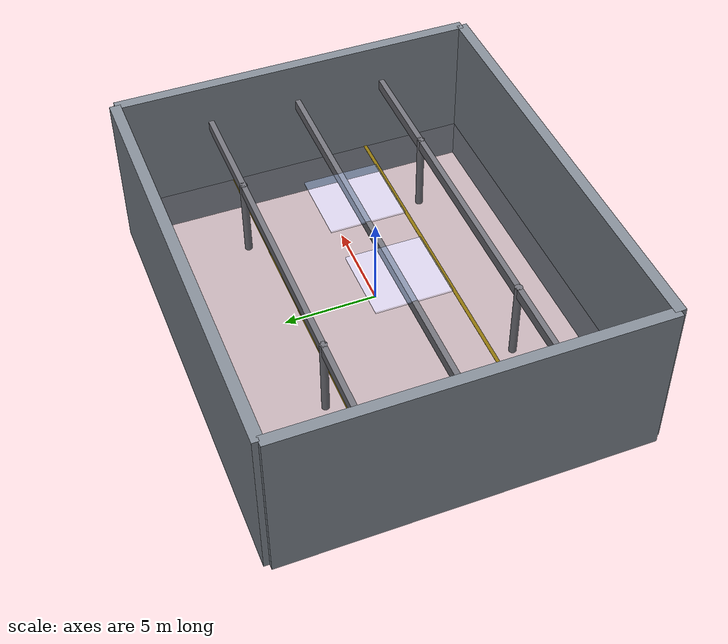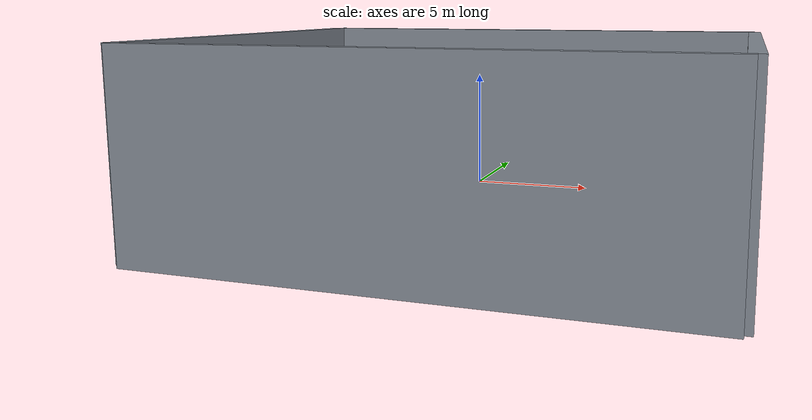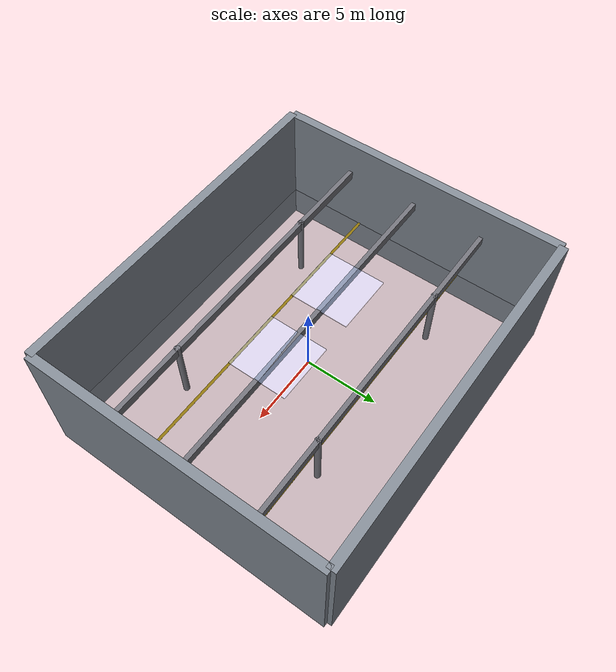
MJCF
<mujoco model="room">
<!-- Warehouse room assets and geometry -->
  <asset>
    <!-- Dark concrete floor with expansion joints -->
    <texture name="concrete_floor" type="2d" builtin="checker"
             rgb1="0.35 0.35 0.38" rgb2="0.32 0.32 0.35"
             width="100" height="100"/>

    <!-- Corrugated metal walls -->
    <texture name="metal_siding" type="2d" builtin="gradient"
             rgb1="0.55 0.58 0.62" rgb2="0.48 0.51 0.55"
             width="64" height="512"/>

    <!-- Steel beams -->
    <texture name="steel_beam" type="2d" builtin="flat"
             rgb1="0.45 0.45 0.48" rgb2="0.4 0.4 0.43"
             width="256" height="256"/>

    <!-- Safety markings -->
    <texture name="safety_stripe" type="2d" builtin="checker"
             rgb1="1.0 0.8 0.0" rgb2="0.1 0.1 0.1"
             width="8" height="8"/>

    <!-- Materials -->
    <material name="concrete" texture="concrete_floor"
              texrepeat="40 30"
              specular="0.1"
              shininess="0.05"
              reflectance="0.02"/>

    <material name="metal_wall" texture="metal_siding"
              texrepeat="8 6"
              specular="0.7"
              shininess="0.6"
              reflectance="0.3"/>

    <material name="steel" texture="steel_beam"
              texrepeat="2 2"
              specular="0.8"
              shininess="0.7"
              reflectance="0.4"/>

    <material name="safety" texture="safety_stripe"
              texrepeat="80 4"/>
  </asset>

  <worldbody>
    <!-- Large concrete floor -->
    <geom name="floor" type="plane"
          size="12 10 0.1"
          material="concrete"
          friction="1.8 0.08 0.02"/>

    <!-- Safety lines -->
    <geom name="safety_line1" type="box"
          size="12 0.1 0.002"
          pos="0 -4 0.002"
          material="safety"/>
    <geom name="safety_line2" type="box"
          size="12 0.1 0.002"
          pos="0 4 0.002"
          material="safety"/>

    <!-- Metal walls - high ceiling -->
    <geom name="wall_north" type="box"
          size="12 0.3 4.5"
          pos="0 10 2.25"
          material="metal_wall"/>
    <geom name="wall_south" type="box"
          size="12 0.3 4.5"
          pos="0 -10 2.25"
          material="metal_wall"/>
    <geom name="wall_east" type="box"
          size="0.3 10 4.5"
          pos="12 0 2.25"
          material="metal_wall"/>
    <geom name="wall_west" type="box"
          size="0.3 10 4.5"
          pos="-12 0 2.25"
          material="metal_wall"/>

    <!-- Support pillars -->
    <geom name="pillar1" type="cylinder"
          size="0.2 2.25"
          pos="-6 -5 2.25"
          material="steel"/>
    <geom name="pillar2" type="cylinder"
          size="0.2 2.25"
          pos="6 -5 2.25"
          material="steel"/>
    <geom name="pillar3" type="cylinder"
          size="0.2 2.25"
          pos="-6 5 2.25"
          material="steel"/>
    <geom name="pillar4" type="cylinder"
          size="0.2 2.25"
          pos="6 5 2.25"
          material="steel"/>

    <!-- Overhead steel beams -->
    <geom name="beam1" type="box"
          size="12 0.15 0.3"
          pos="0 -5 4.2"
          material="steel"/>
    <geom name="beam2" type="box"
          size="12 0.15 0.3"
          pos="0 0 4.2"
          material="steel"/>
    <geom name="beam3" type="box"
          size="12 0.15 0.3"
          pos="0 5 4.2"
          material="steel"/>

    <!-- Loading dock door -->
    <geom name="dock_door" type="box"
          size="2 0.1 2"
          pos="8 -9.9 1"
          rgba="0.6 0.3 0.1 1"/>

    <!-- Skylights (transparent) -->
    <geom name="skylight1" type="box"
          size="2 2 0.05"
          pos="-3 0 4.45"
          rgba="0.7 0.8 1.0 0.4"/>
    <geom name="skylight2" type="box"
          size="2 2 0.05"
          pos="3 0 4.45"
          rgba="0.7 0.8 1.0 0.4"/>
  </worldbody>
</mujoco>
